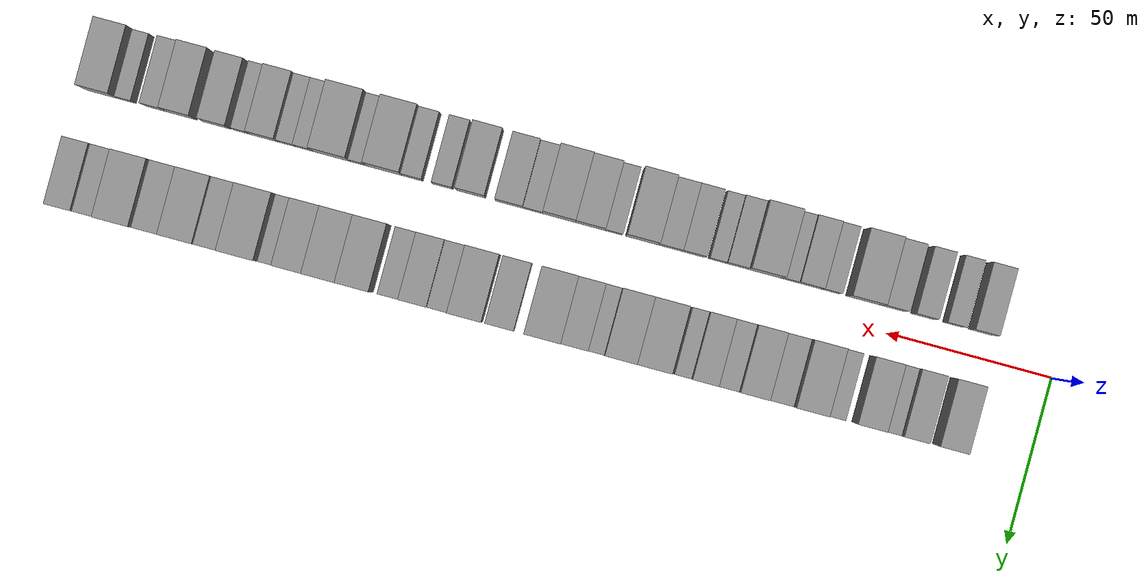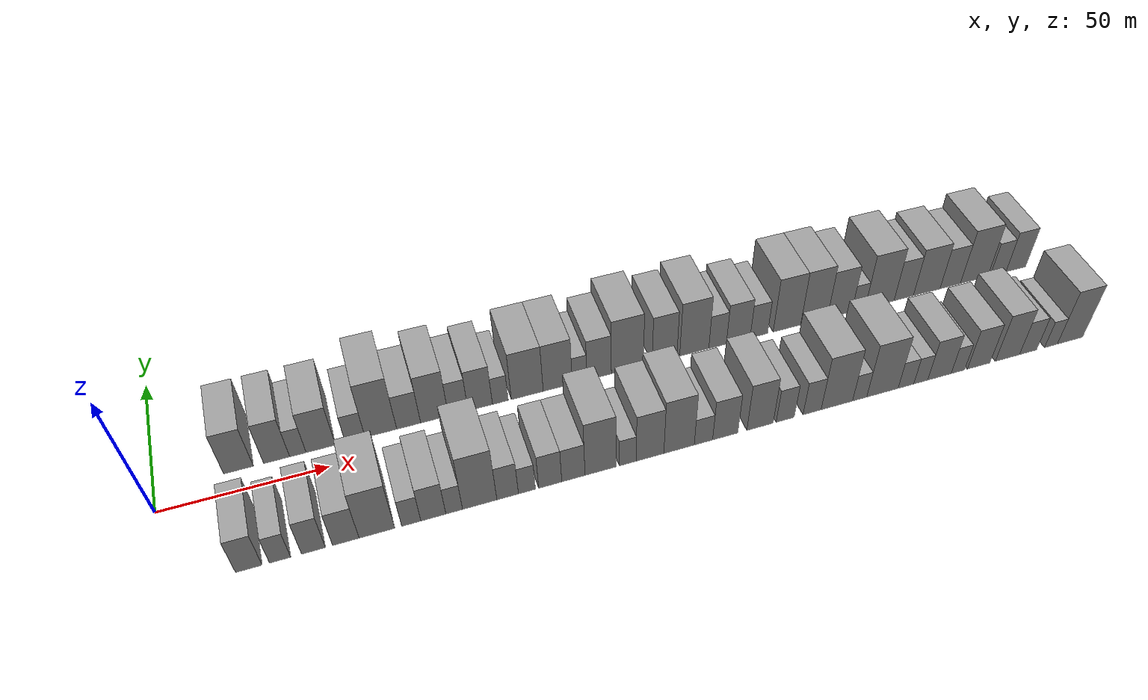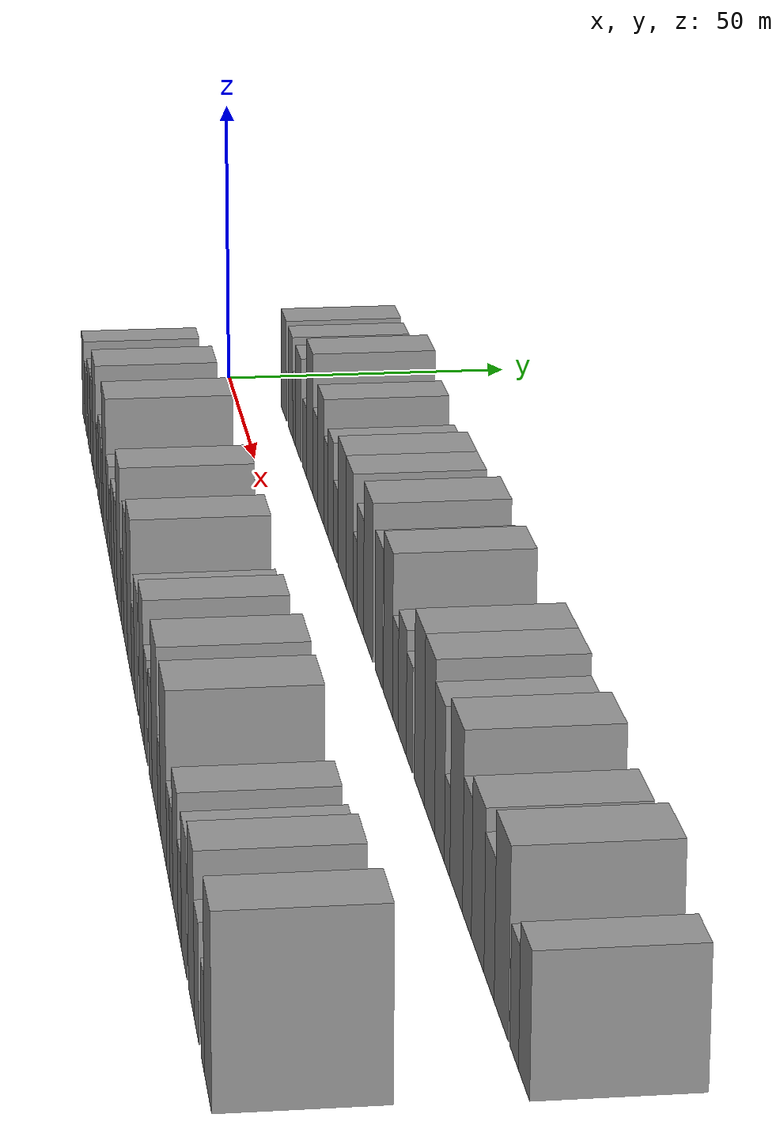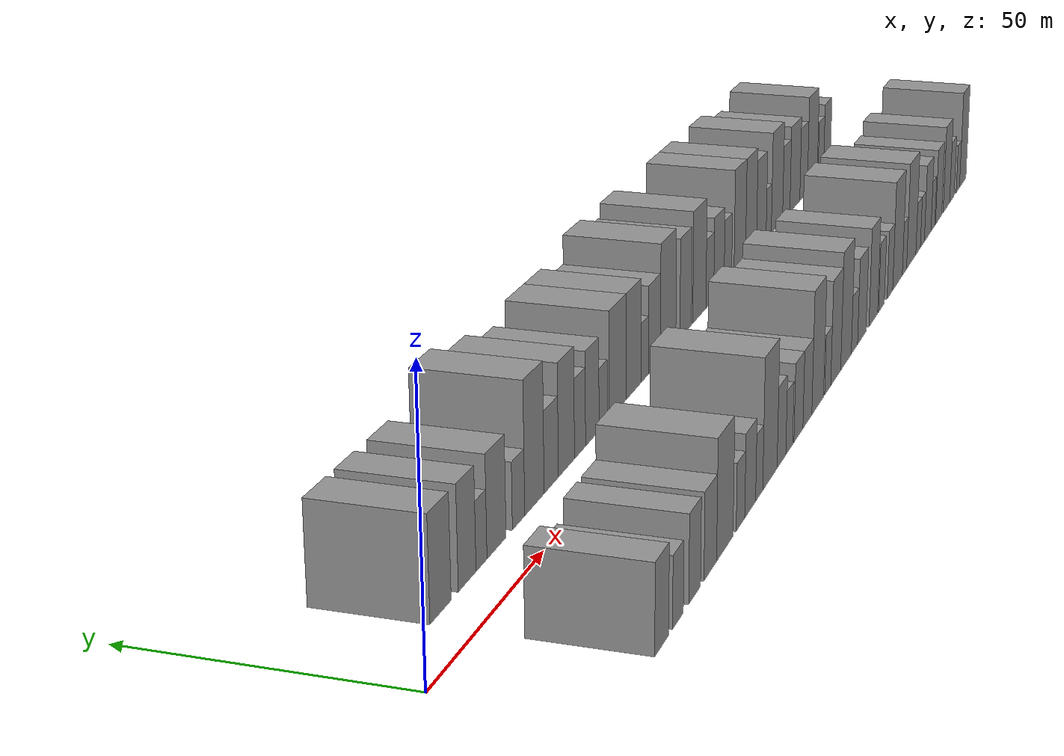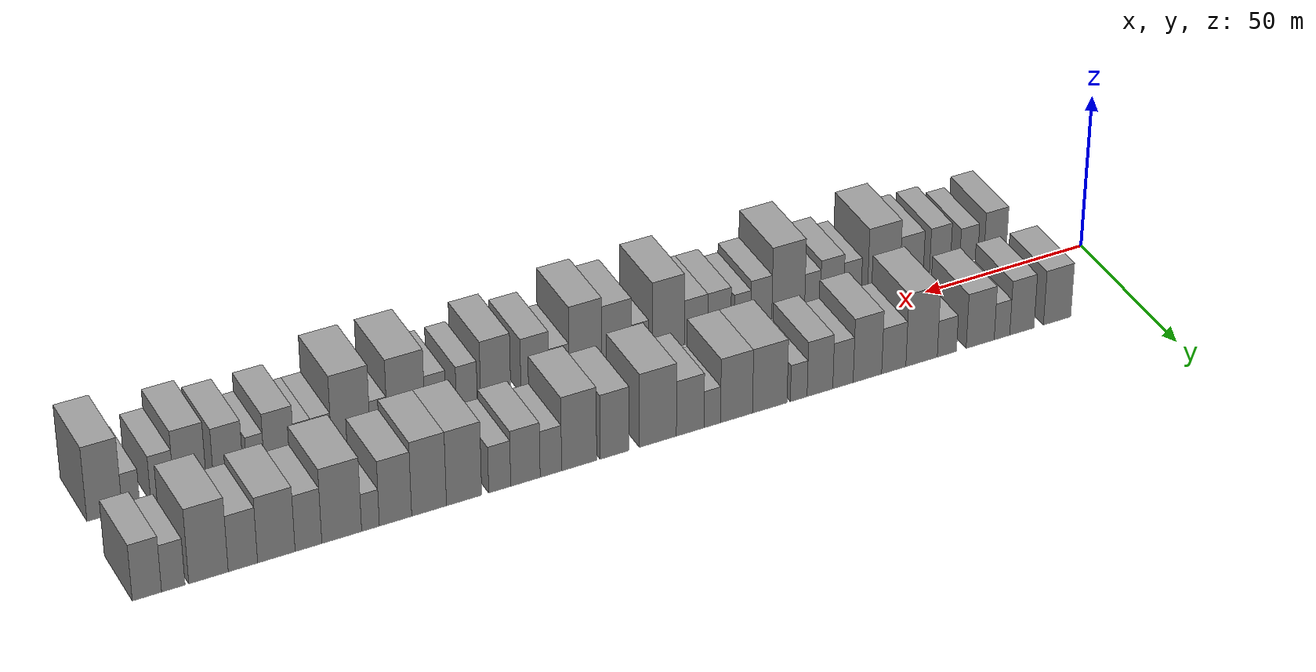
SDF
<sdf version="1.6">
 <world name="default">
  <scene>
   <sky><clouds><speed>12</speed></clouds></sky>
   <ambient>0.4 0.4 0.4 1</ambient>
   <background>0.7 0.7 0.7 1</background>
   <shadows>1</shadows>
  </scene>
  <gravity>0 0 -9.8066</gravity>
  <magnetic_field>6e-06 2.3e-05 -4.2e-05</magnetic_field>
  <physics default="0" name="default_physics" type="ode">
   <ode>
    <solver>
     <type>quick</type>
     <iters>10</iters>
     <sor>1.0</sor>
     <use_dynamic_moi_rescaling>0</use_dynamic_moi_rescaling>
    </solver>
    <constraints>
     <cfm>0</cfm>
     <erp>0.2</erp>
     <contact_max_correcting_vel>100</contact_max_correcting_vel>
     <contact_surface_layer>0.001</contact_surface_layer>
    </constraints>
   </ode>
   <max_step_size>0.004</max_step_size>
   <real_time_factor>1</real_time_factor>
   <real_time_update_rate>250</real_time_update_rate>
  </physics>
  <light name="sun" type="directional">
   <pose>0 0 10 0 0 0</pose>
   <diffuse>0.8 0.8 0.8 1</diffuse>
   <specular>0.2 0.2 0.2 1</specular>
   <attenuation>
    <range>1000</range>
    <constant>0.9</constant>
    <linear>0.01</linear>
    <quadratic>0.001</quadratic>
   </attenuation>
   <direction>-0.5 0.1 -0.9</direction>
  </light>
  <model name="building_1">
   <static>1</static>
   <pose>24.3288 17.5000 0 0.000000 0.000000 1.570796</pose>
   <link name="link">
    <pose>0 0 9.00 0 0 0</pose>
    <collision name="collision"><geometry><box><size>20.0000 8.6577 18.0000</size></box></geometry></collision>
    <visual name="visual">
     <cast_shadows>0</cast_shadows>
     <geometry><box><size>20.0000 8.6577 18.0000</size></box></geometry>
     <material>
      <script>
       <uri>model://grey_wall/materials/scripts</uri>
       <uri>model://grey_wall/materials/textures</uri>
       <name>vrc/grey_wall</name>
      </script>
     </material>
    </visual>
   </link>
  </model>
  <model name="building_2">
   <static>1</static>
   <pose>35.4990 17.5000 0 0.000000 0.000000 1.570796</pose>
   <link name="link">
    <pose>0 0 9.00 0 0 0</pose>
    <collision name="collision"><geometry><box><size>20.0000 7.6827 18.0000</size></box></geometry></collision>
    <visual name="visual">
     <cast_shadows>0</cast_shadows>
     <geometry><box><size>20.0000 7.6827 18.0000</size></box></geometry>
     <material>
      <script>
       <uri>model://grey_wall/materials/scripts</uri>
       <uri>model://grey_wall/materials/textures</uri>
       <name>vrc/grey_wall</name>
      </script>
     </material>
    </visual>
   </link>
  </model>
  <model name="building_3">
   <static>1</static>
   <pose>41.7820 17.5000 0 0.000000 0.000000 1.570796</pose>
   <link name="link">
    <pose>0 0 6.00 0 0 0</pose>
    <collision name="collision"><geometry><box><size>20.0000 4.8833 12.0000</size></box></geometry></collision>
    <visual name="visual">
     <cast_shadows>0</cast_shadows>
     <geometry><box><size>20.0000 4.8833 12.0000</size></box></geometry>
     <material>
      <script>
       <uri>model://grey_wall/materials/scripts</uri>
       <uri>model://grey_wall/materials/textures</uri>
       <name>vrc/grey_wall</name>
      </script>
     </material>
    </visual>
   </link>
  </model>
  <model name="building_4">
   <static>1</static>
   <pose>48.6134 17.5000 0 0.000000 0.000000 1.570796</pose>
   <link name="link">
    <pose>0 0 9.00 0 0 0</pose>
    <collision name="collision"><geometry><box><size>20.0000 8.7796 18.0000</size></box></geometry></collision>
    <visual name="visual">
     <cast_shadows>0</cast_shadows>
     <geometry><box><size>20.0000 8.7796 18.0000</size></box></geometry>
     <material>
      <script>
       <uri>model://grey_wall/materials/scripts</uri>
       <uri>model://grey_wall/materials/textures</uri>
       <name>vrc/grey_wall</name>
      </script>
     </material>
    </visual>
   </link>
  </model>
  <model name="building_5">
   <static>1</static>
   <pose>59.0030 17.5000 0 0.000000 0.000000 1.570796</pose>
   <link name="link">
    <pose>0 0 6.00 0 0 0</pose>
    <collision name="collision"><geometry><box><size>20.0000 5.9996 12.0000</size></box></geometry></collision>
    <visual name="visual">
     <cast_shadows>0</cast_shadows>
     <geometry><box><size>20.0000 5.9996 12.0000</size></box></geometry>
     <material>
      <script>
       <uri>model://grey_wall/materials/scripts</uri>
       <uri>model://grey_wall/materials/textures</uri>
       <name>vrc/grey_wall</name>
      </script>
     </material>
    </visual>
   </link>
  </model>
  <model name="building_6">
   <static>1</static>
   <pose>66.8728 17.5000 0 0.000000 0.000000 1.570796</pose>
   <link name="link">
    <pose>0 0 12.00 0 0 0</pose>
    <collision name="collision"><geometry><box><size>20.0000 9.7398 24.0000</size></box></geometry></collision>
    <visual name="visual">
     <cast_shadows>0</cast_shadows>
     <geometry><box><size>20.0000 9.7398 24.0000</size></box></geometry>
     <material>
      <script>
       <uri>model://grey_wall/materials/scripts</uri>
       <uri>model://grey_wall/materials/textures</uri>
       <name>vrc/grey_wall</name>
      </script>
     </material>
    </visual>
   </link>
  </model>
  <model name="building_7">
   <static>1</static>
   <pose>75.4735 17.5000 0 0.000000 0.000000 1.570796</pose>
   <link name="link">
    <pose>0 0 7.50 0 0 0</pose>
    <collision name="collision"><geometry><box><size>20.0000 7.4617 15.0000</size></box></geometry></collision>
    <visual name="visual">
     <cast_shadows>0</cast_shadows>
     <geometry><box><size>20.0000 7.4617 15.0000</size></box></geometry>
     <material>
      <script>
       <uri>model://grey_wall/materials/scripts</uri>
       <uri>model://grey_wall/materials/textures</uri>
       <name>vrc/grey_wall</name>
      </script>
     </material>
    </visual>
   </link>
  </model>
  <model name="building_8">
   <static>1</static>
   <pose>83.5701 17.5000 0 0.000000 0.000000 1.570796</pose>
   <link name="link">
    <pose>0 0 10.50 0 0 0</pose>
    <collision name="collision"><geometry><box><size>20.0000 8.7315 21.0000</size></box></geometry></collision>
    <visual name="visual">
     <cast_shadows>0</cast_shadows>
     <geometry><box><size>20.0000 8.7315 21.0000</size></box></geometry>
     <material>
      <script>
       <uri>model://grey_wall/materials/scripts</uri>
       <uri>model://grey_wall/materials/textures</uri>
       <name>vrc/grey_wall</name>
      </script>
     </material>
    </visual>
   </link>
  </model>
  <model name="building_9">
   <static>1</static>
   <pose>91.0407 17.5000 0 0.000000 0.000000 1.570796</pose>
   <link name="link">
    <pose>0 0 7.50 0 0 0</pose>
    <collision name="collision"><geometry><box><size>20.0000 6.2097 15.0000</size></box></geometry></collision>
    <visual name="visual">
     <cast_shadows>0</cast_shadows>
     <geometry><box><size>20.0000 6.2097 15.0000</size></box></geometry>
     <material>
      <script>
       <uri>model://grey_wall/materials/scripts</uri>
       <uri>model://grey_wall/materials/textures</uri>
       <name>vrc/grey_wall</name>
      </script>
     </material>
    </visual>
   </link>
  </model>
  <model name="building_10">
   <static>1</static>
   <pose>98.0474 17.5000 0 0.000000 0.000000 1.570796</pose>
   <link name="link">
    <pose>0 0 9.00 0 0 0</pose>
    <collision name="collision"><geometry><box><size>20.0000 7.8037 18.0000</size></box></geometry></collision>
    <visual name="visual">
     <cast_shadows>0</cast_shadows>
     <geometry><box><size>20.0000 7.8037 18.0000</size></box></geometry>
     <material>
      <script>
       <uri>model://grey_wall/materials/scripts</uri>
       <uri>model://grey_wall/materials/textures</uri>
       <name>vrc/grey_wall</name>
      </script>
     </material>
    </visual>
   </link>
  </model>
  <model name="building_11">
   <static>1</static>
   <pose>104.4831 17.5000 0 0.000000 0.000000 1.570796</pose>
   <link name="link">
    <pose>0 0 6.00 0 0 0</pose>
    <collision name="collision"><geometry><box><size>20.0000 5.0678 12.0000</size></box></geometry></collision>
    <visual name="visual">
     <cast_shadows>0</cast_shadows>
     <geometry><box><size>20.0000 5.0678 12.0000</size></box></geometry>
     <material>
      <script>
       <uri>model://grey_wall/materials/scripts</uri>
       <uri>model://grey_wall/materials/textures</uri>
       <name>vrc/grey_wall</name>
      </script>
     </material>
    </visual>
   </link>
  </model>
  <model name="building_12">
   <static>1</static>
   <pose>113.2187 17.5000 0 0.000000 0.000000 1.570796</pose>
   <link name="link">
    <pose>0 0 10.50 0 0 0</pose>
    <collision name="collision"><geometry><box><size>20.0000 10.4034 21.0000</size></box></geometry></collision>
    <visual name="visual">
     <cast_shadows>0</cast_shadows>
     <geometry><box><size>20.0000 10.4034 21.0000</size></box></geometry>
     <material>
      <script>
       <uri>model://grey_wall/materials/scripts</uri>
       <uri>model://grey_wall/materials/textures</uri>
       <name>vrc/grey_wall</name>
      </script>
     </material>
    </visual>
   </link>
  </model>
  <model name="building_13">
   <static>1</static>
   <pose>123.2028 17.5000 0 0.000000 0.000000 1.570796</pose>
   <link name="link">
    <pose>0 0 10.50 0 0 0</pose>
    <collision name="collision"><geometry><box><size>20.0000 9.5647 21.0000</size></box></geometry></collision>
    <visual name="visual">
     <cast_shadows>0</cast_shadows>
     <geometry><box><size>20.0000 9.5647 21.0000</size></box></geometry>
     <material>
      <script>
       <uri>model://grey_wall/materials/scripts</uri>
       <uri>model://grey_wall/materials/textures</uri>
       <name>vrc/grey_wall</name>
      </script>
     </material>
    </visual>
   </link>
  </model>
  <model name="building_14">
   <static>1</static>
   <pose>130.4264 17.5000 0 0.000000 0.000000 1.570796</pose>
   <link name="link">
    <pose>0 0 6.00 0 0 0</pose>
    <collision name="collision"><geometry><box><size>20.0000 4.8826 12.0000</size></box></geometry></collision>
    <visual name="visual">
     <cast_shadows>0</cast_shadows>
     <geometry><box><size>20.0000 4.8826 12.0000</size></box></geometry>
     <material>
      <script>
       <uri>model://grey_wall/materials/scripts</uri>
       <uri>model://grey_wall/materials/textures</uri>
       <name>vrc/grey_wall</name>
      </script>
     </material>
    </visual>
   </link>
  </model>
  <model name="building_15">
   <static>1</static>
   <pose>136.9708 17.5000 0 0.000000 0.000000 1.570796</pose>
   <link name="link">
    <pose>0 0 9.00 0 0 0</pose>
    <collision name="collision"><geometry><box><size>20.0000 8.2061 18.0000</size></box></geometry></collision>
    <visual name="visual">
     <cast_shadows>0</cast_shadows>
     <geometry><box><size>20.0000 8.2061 18.0000</size></box></geometry>
     <material>
      <script>
       <uri>model://grey_wall/materials/scripts</uri>
       <uri>model://grey_wall/materials/textures</uri>
       <name>vrc/grey_wall</name>
      </script>
     </material>
    </visual>
   </link>
  </model>
  <model name="building_16">
   <static>1</static>
   <pose>146.4967 17.5000 0 0.000000 0.000000 1.570796</pose>
   <link name="link">
    <pose>0 0 12.00 0 0 0</pose>
    <collision name="collision"><geometry><box><size>20.0000 10.8458 24.0000</size></box></geometry></collision>
    <visual name="visual">
     <cast_shadows>0</cast_shadows>
     <geometry><box><size>20.0000 10.8458 24.0000</size></box></geometry>
     <material>
      <script>
       <uri>model://grey_wall/materials/scripts</uri>
       <uri>model://grey_wall/materials/textures</uri>
       <name>vrc/grey_wall</name>
      </script>
     </material>
    </visual>
   </link>
  </model>
  <model name="building_17">
   <static>1</static>
   <pose>159.1878 17.5000 0 0.000000 0.000000 1.570796</pose>
   <link name="link">
    <pose>0 0 10.50 0 0 0</pose>
    <collision name="collision"><geometry><box><size>20.0000 8.5364 21.0000</size></box></geometry></collision>
    <visual name="visual">
     <cast_shadows>0</cast_shadows>
     <geometry><box><size>20.0000 8.5364 21.0000</size></box></geometry>
     <material>
      <script>
       <uri>model://grey_wall/materials/scripts</uri>
       <uri>model://grey_wall/materials/textures</uri>
       <name>vrc/grey_wall</name>
      </script>
     </material>
    </visual>
   </link>
  </model>
  <model name="building_18">
   <static>1</static>
   <pose>169.5330 17.5000 0 0.000000 0.000000 1.570796</pose>
   <link name="link">
    <pose>0 0 12.00 0 0 0</pose>
    <collision name="collision"><geometry><box><size>20.0000 10.1541 24.0000</size></box></geometry></collision>
    <visual name="visual">
     <cast_shadows>0</cast_shadows>
     <geometry><box><size>20.0000 10.1541 24.0000</size></box></geometry>
     <material>
      <script>
       <uri>model://grey_wall/materials/scripts</uri>
       <uri>model://grey_wall/materials/textures</uri>
       <name>vrc/grey_wall</name>
      </script>
     </material>
    </visual>
   </link>
  </model>
  <model name="building_19">
   <static>1</static>
   <pose>177.7087 17.5000 0 0.000000 0.000000 1.570796</pose>
   <link name="link">
    <pose>0 0 7.50 0 0 0</pose>
    <collision name="collision"><geometry><box><size>20.0000 6.1973 15.0000</size></box></geometry></collision>
    <visual name="visual">
     <cast_shadows>0</cast_shadows>
     <geometry><box><size>20.0000 6.1973 15.0000</size></box></geometry>
     <material>
      <script>
       <uri>model://grey_wall/materials/scripts</uri>
       <uri>model://grey_wall/materials/textures</uri>
       <name>vrc/grey_wall</name>
      </script>
     </material>
    </visual>
   </link>
  </model>
  <model name="building_20">
   <static>1</static>
   <pose>185.0354 17.5000 0 0.000000 0.000000 1.570796</pose>
   <link name="link">
    <pose>0 0 9.00 0 0 0</pose>
    <collision name="collision"><geometry><box><size>20.0000 8.4561 18.0000</size></box></geometry></collision>
    <visual name="visual">
     <cast_shadows>0</cast_shadows>
     <geometry><box><size>20.0000 8.4561 18.0000</size></box></geometry>
     <material>
      <script>
       <uri>model://grey_wall/materials/scripts</uri>
       <uri>model://grey_wall/materials/textures</uri>
       <name>vrc/grey_wall</name>
      </script>
     </material>
    </visual>
   </link>
  </model>
  <model name="building_21">
   <static>1</static>
   <pose>192.4085 17.5000 0 0.000000 0.000000 1.570796</pose>
   <link name="link">
    <pose>0 0 7.50 0 0 0</pose>
    <collision name="collision"><geometry><box><size>20.0000 6.2901 15.0000</size></box></geometry></collision>
    <visual name="visual">
     <cast_shadows>0</cast_shadows>
     <geometry><box><size>20.0000 6.2901 15.0000</size></box></geometry>
     <material>
      <script>
       <uri>model://grey_wall/materials/scripts</uri>
       <uri>model://grey_wall/materials/textures</uri>
       <name>vrc/grey_wall</name>
      </script>
     </material>
    </visual>
   </link>
  </model>
  <model name="building_22">
   <static>1</static>
   <pose>202.5575 17.5000 0 0.000000 0.000000 1.570796</pose>
   <link name="link">
    <pose>0 0 12.00 0 0 0</pose>
    <collision name="collision"><geometry><box><size>20.0000 10.0080 24.0000</size></box></geometry></collision>
    <visual name="visual">
     <cast_shadows>0</cast_shadows>
     <geometry><box><size>20.0000 10.0080 24.0000</size></box></geometry>
     <material>
      <script>
       <uri>model://grey_wall/materials/scripts</uri>
       <uri>model://grey_wall/materials/textures</uri>
       <name>vrc/grey_wall</name>
      </script>
     </material>
    </visual>
   </link>
  </model>
  <model name="building_23">
   <static>1</static>
   <pose>212.4708 17.5000 0 0.000000 0.000000 1.570796</pose>
   <link name="link">
    <pose>0 0 12.00 0 0 0</pose>
    <collision name="collision"><geometry><box><size>20.0000 9.8185 24.0000</size></box></geometry></collision>
    <visual name="visual">
     <cast_shadows>0</cast_shadows>
     <geometry><box><size>20.0000 9.8185 24.0000</size></box></geometry>
     <material>
      <script>
       <uri>model://grey_wall/materials/scripts</uri>
       <uri>model://grey_wall/materials/textures</uri>
       <name>vrc/grey_wall</name>
      </script>
     </material>
    </visual>
   </link>
  </model>
  <model name="building_24">
   <static>1</static>
   <pose>221.9110 17.5000 0 0.000000 0.000000 1.570796</pose>
   <link name="link">
    <pose>0 0 10.50 0 0 0</pose>
    <collision name="collision"><geometry><box><size>20.0000 9.0620 21.0000</size></box></geometry></collision>
    <visual name="visual">
     <cast_shadows>0</cast_shadows>
     <geometry><box><size>20.0000 9.0620 21.0000</size></box></geometry>
     <material>
      <script>
       <uri>model://grey_wall/materials/scripts</uri>
       <uri>model://grey_wall/materials/textures</uri>
       <name>vrc/grey_wall</name>
      </script>
     </material>
    </visual>
   </link>
  </model>
  <model name="building_25">
   <static>1</static>
   <pose>228.9191 17.5000 0 0.000000 0.000000 1.570796</pose>
   <link name="link">
    <pose>0 0 6.00 0 0 0</pose>
    <collision name="collision"><geometry><box><size>20.0000 4.9543 12.0000</size></box></geometry></collision>
    <visual name="visual">
     <cast_shadows>0</cast_shadows>
     <geometry><box><size>20.0000 4.9543 12.0000</size></box></geometry>
     <material>
      <script>
       <uri>model://grey_wall/materials/scripts</uri>
       <uri>model://grey_wall/materials/textures</uri>
       <name>vrc/grey_wall</name>
      </script>
     </material>
    </visual>
   </link>
  </model>
  <model name="building_26">
   <static>1</static>
   <pose>236.9182 17.5000 0 0.000000 0.000000 1.570796</pose>
   <link name="link">
    <pose>0 0 12.00 0 0 0</pose>
    <collision name="collision"><geometry><box><size>20.0000 11.0440 24.0000</size></box></geometry></collision>
    <visual name="visual">
     <cast_shadows>0</cast_shadows>
     <geometry><box><size>20.0000 11.0440 24.0000</size></box></geometry>
     <material>
      <script>
       <uri>model://grey_wall/materials/scripts</uri>
       <uri>model://grey_wall/materials/textures</uri>
       <name>vrc/grey_wall</name>
      </script>
     </material>
    </visual>
   </link>
  </model>
  <model name="building_27">
   <static>1</static>
   <pose>246.1286 17.5000 0 0.000000 0.000000 1.570796</pose>
   <link name="link">
    <pose>0 0 9.00 0 0 0</pose>
    <collision name="collision"><geometry><box><size>20.0000 7.3767 18.0000</size></box></geometry></collision>
    <visual name="visual">
     <cast_shadows>0</cast_shadows>
     <geometry><box><size>20.0000 7.3767 18.0000</size></box></geometry>
     <material>
      <script>
       <uri>model://grey_wall/materials/scripts</uri>
       <uri>model://grey_wall/materials/textures</uri>
       <name>vrc/grey_wall</name>
      </script>
     </material>
    </visual>
   </link>
  </model>
  <model name="building_28">
   <static>1</static>
   <pose>254.9602 17.5000 0 0.000000 0.000000 1.570796</pose>
   <link name="link">
    <pose>0 0 10.50 0 0 0</pose>
    <collision name="collision"><geometry><box><size>20.0000 10.2866 21.0000</size></box></geometry></collision>
    <visual name="visual">
     <cast_shadows>0</cast_shadows>
     <geometry><box><size>20.0000 10.2866 21.0000</size></box></geometry>
     <material>
      <script>
       <uri>model://grey_wall/materials/scripts</uri>
       <uri>model://grey_wall/materials/textures</uri>
       <name>vrc/grey_wall</name>
      </script>
     </material>
    </visual>
   </link>
  </model>
  <model name="building_29">
   <static>1</static>
   <pose>264.1082 17.5000 0 0.000000 0.000000 1.570796</pose>
   <link name="link">
    <pose>0 0 9.00 0 0 0</pose>
    <collision name="collision"><geometry><box><size>20.0000 8.0094 18.0000</size></box></geometry></collision>
    <visual name="visual">
     <cast_shadows>0</cast_shadows>
     <geometry><box><size>20.0000 8.0094 18.0000</size></box></geometry>
     <material>
      <script>
       <uri>model://grey_wall/materials/scripts</uri>
       <uri>model://grey_wall/materials/textures</uri>
       <name>vrc/grey_wall</name>
      </script>
     </material>
    </visual>
   </link>
  </model>
  <model name="building_30">
   <static>1</static>
   <pose>273.4680 17.5000 0 0.000000 0.000000 1.570796</pose>
   <link name="link">
    <pose>0 0 12.00 0 0 0</pose>
    <collision name="collision"><geometry><box><size>20.0000 10.7102 24.0000</size></box></geometry></collision>
    <visual name="visual">
     <cast_shadows>0</cast_shadows>
     <geometry><box><size>20.0000 10.7102 24.0000</size></box></geometry>
     <material>
      <script>
       <uri>model://grey_wall/materials/scripts</uri>
       <uri>model://grey_wall/materials/textures</uri>
       <name>vrc/grey_wall</name>
      </script>
     </material>
    </visual>
   </link>
  </model>
  <model name="building_31">
   <static>1</static>
   <pose>282.9808 17.5000 0 0.000000 0.000000 1.570796</pose>
   <link name="link">
    <pose>0 0 7.50 0 0 0</pose>
    <collision name="collision"><geometry><box><size>20.0000 6.3152 15.0000</size></box></geometry></collision>
    <visual name="visual">
     <cast_shadows>0</cast_shadows>
     <geometry><box><size>20.0000 6.3152 15.0000</size></box></geometry>
     <material>
      <script>
       <uri>model://grey_wall/materials/scripts</uri>
       <uri>model://grey_wall/materials/textures</uri>
       <name>vrc/grey_wall</name>
      </script>
     </material>
    </visual>
   </link>
  </model>
  <model name="building_32">
   <static>1</static>
   <pose>290.0704 17.5000 0 0.000000 0.000000 1.570796</pose>
   <link name="link">
    <pose>0 0 9.00 0 0 0</pose>
    <collision name="collision"><geometry><box><size>20.0000 7.8642 18.0000</size></box></geometry></collision>
    <visual name="visual">
     <cast_shadows>0</cast_shadows>
     <geometry><box><size>20.0000 7.8642 18.0000</size></box></geometry>
     <material>
      <script>
       <uri>model://grey_wall/materials/scripts</uri>
       <uri>model://grey_wall/materials/textures</uri>
       <name>vrc/grey_wall</name>
      </script>
     </material>
    </visual>
   </link>
  </model>
  <model name="building_33">
   <static>1</static>
   <pose>23.6141 -17.5000 0 0.000000 0.000000 1.570796</pose>
   <link name="link">
    <pose>0 0 7.50 0 0 0</pose>
    <collision name="collision"><geometry><box><size>20.0000 7.2282 15.0000</size></box></geometry></collision>
    <visual name="visual">
     <cast_shadows>0</cast_shadows>
     <geometry><box><size>20.0000 7.2282 15.0000</size></box></geometry>
     <material>
      <script>
       <uri>model://grey_wall/materials/scripts</uri>
       <uri>model://grey_wall/materials/textures</uri>
       <name>vrc/grey_wall</name>
      </script>
     </material>
    </visual>
   </link>
  </model>
  <model name="building_34">
   <static>1</static>
   <pose>32.1389 -17.5000 0 0.000000 0.000000 1.570796</pose>
   <link name="link">
    <pose>0 0 6.00 0 0 0</pose>
    <collision name="collision"><geometry><box><size>20.0000 5.8214 12.0000</size></box></geometry></collision>
    <visual name="visual">
     <cast_shadows>0</cast_shadows>
     <geometry><box><size>20.0000 5.8214 12.0000</size></box></geometry>
     <material>
      <script>
       <uri>model://grey_wall/materials/scripts</uri>
       <uri>model://grey_wall/materials/textures</uri>
       <name>vrc/grey_wall</name>
      </script>
     </material>
    </visual>
   </link>
  </model>
  <model name="building_35">
   <static>1</static>
   <pose>41.3731 -17.5000 0 0.000000 0.000000 1.570796</pose>
   <link name="link">
    <pose>0 0 7.50 0 0 0</pose>
    <collision name="collision"><geometry><box><size>20.0000 6.6470 15.0000</size></box></geometry></collision>
    <visual name="visual">
     <cast_shadows>0</cast_shadows>
     <geometry><box><size>20.0000 6.6470 15.0000</size></box></geometry>
     <material>
      <script>
       <uri>model://grey_wall/materials/scripts</uri>
       <uri>model://grey_wall/materials/textures</uri>
       <name>vrc/grey_wall</name>
      </script>
     </material>
    </visual>
   </link>
  </model>
  <model name="building_36">
   <static>1</static>
   <pose>50.4240 -17.5000 0 0.000000 0.000000 1.570796</pose>
   <link name="link">
    <pose>0 0 7.50 0 0 0</pose>
    <collision name="collision"><geometry><box><size>20.0000 7.4547 15.0000</size></box></geometry></collision>
    <visual name="visual">
     <cast_shadows>0</cast_shadows>
     <geometry><box><size>20.0000 7.4547 15.0000</size></box></geometry>
     <material>
      <script>
       <uri>model://grey_wall/materials/scripts</uri>
       <uri>model://grey_wall/materials/textures</uri>
       <name>vrc/grey_wall</name>
      </script>
     </material>
    </visual>
   </link>
  </model>
  <model name="building_37">
   <static>1</static>
   <pose>59.2470 -17.5000 0 0.000000 0.000000 1.570796</pose>
   <link name="link">
    <pose>0 0 10.50 0 0 0</pose>
    <collision name="collision"><geometry><box><size>20.0000 10.1913 21.0000</size></box></geometry></collision>
    <visual name="visual">
     <cast_shadows>0</cast_shadows>
     <geometry><box><size>20.0000 10.1913 21.0000</size></box></geometry>
     <material>
      <script>
       <uri>model://grey_wall/materials/scripts</uri>
       <uri>model://grey_wall/materials/textures</uri>
       <name>vrc/grey_wall</name>
      </script>
     </material>
    </visual>
   </link>
  </model>
  <model name="building_38">
   <static>1</static>
   <pose>69.1072 -17.5000 0 0.000000 0.000000 1.570796</pose>
   <link name="link">
    <pose>0 0 6.00 0 0 0</pose>
    <collision name="collision"><geometry><box><size>20.0000 5.5290 12.0000</size></box></geometry></collision>
    <visual name="visual">
     <cast_shadows>0</cast_shadows>
     <geometry><box><size>20.0000 5.5290 12.0000</size></box></geometry>
     <material>
      <script>
       <uri>model://grey_wall/materials/scripts</uri>
       <uri>model://grey_wall/materials/textures</uri>
       <name>vrc/grey_wall</name>
      </script>
     </material>
    </visual>
   </link>
  </model>
  <model name="building_39">
   <static>1</static>
   <pose>75.5181 -17.5000 0 0.000000 0.000000 1.570796</pose>
   <link name="link">
    <pose>0 0 7.50 0 0 0</pose>
    <collision name="collision"><geometry><box><size>20.0000 7.2929 15.0000</size></box></geometry></collision>
    <visual name="visual">
     <cast_shadows>0</cast_shadows>
     <geometry><box><size>20.0000 7.2929 15.0000</size></box></geometry>
     <material>
      <script>
       <uri>model://grey_wall/materials/scripts</uri>
       <uri>model://grey_wall/materials/textures</uri>
       <name>vrc/grey_wall</name>
      </script>
     </material>
    </visual>
   </link>
  </model>
  <model name="building_40">
   <static>1</static>
   <pose>81.6209 -17.5000 0 0.000000 0.000000 1.570796</pose>
   <link name="link">
    <pose>0 0 6.00 0 0 0</pose>
    <collision name="collision"><geometry><box><size>20.0000 4.9127 12.0000</size></box></geometry></collision>
    <visual name="visual">
     <cast_shadows>0</cast_shadows>
     <geometry><box><size>20.0000 4.9127 12.0000</size></box></geometry>
     <material>
      <script>
       <uri>model://grey_wall/materials/scripts</uri>
       <uri>model://grey_wall/materials/textures</uri>
       <name>vrc/grey_wall</name>
      </script>
     </material>
    </visual>
   </link>
  </model>
  <model name="building_41">
   <static>1</static>
   <pose>89.1789 -17.5000 0 0.000000 0.000000 1.570796</pose>
   <link name="link">
    <pose>0 0 12.00 0 0 0</pose>
    <collision name="collision"><geometry><box><size>20.0000 10.2033 24.0000</size></box></geometry></collision>
    <visual name="visual">
     <cast_shadows>0</cast_shadows>
     <geometry><box><size>20.0000 10.2033 24.0000</size></box></geometry>
     <material>
      <script>
       <uri>model://grey_wall/materials/scripts</uri>
       <uri>model://grey_wall/materials/textures</uri>
       <name>vrc/grey_wall</name>
      </script>
     </material>
    </visual>
   </link>
  </model>
  <model name="building_42">
   <static>1</static>
   <pose>97.5143 -17.5000 0 0.000000 0.000000 1.570796</pose>
   <link name="link">
    <pose>0 0 7.50 0 0 0</pose>
    <collision name="collision"><geometry><box><size>20.0000 6.4674 15.0000</size></box></geometry></collision>
    <visual name="visual">
     <cast_shadows>0</cast_shadows>
     <geometry><box><size>20.0000 6.4674 15.0000</size></box></geometry>
     <material>
      <script>
       <uri>model://grey_wall/materials/scripts</uri>
       <uri>model://grey_wall/materials/textures</uri>
       <name>vrc/grey_wall</name>
      </script>
     </material>
    </visual>
   </link>
  </model>
  <model name="building_43">
   <static>1</static>
   <pose>103.3263 -17.5000 0 0.000000 0.000000 1.570796</pose>
   <link name="link">
    <pose>0 0 6.00 0 0 0</pose>
    <collision name="collision"><geometry><box><size>20.0000 5.1566 12.0000</size></box></geometry></collision>
    <visual name="visual">
     <cast_shadows>0</cast_shadows>
     <geometry><box><size>20.0000 5.1566 12.0000</size></box></geometry>
     <material>
      <script>
       <uri>model://grey_wall/materials/scripts</uri>
       <uri>model://grey_wall/materials/textures</uri>
       <name>vrc/grey_wall</name>
      </script>
     </material>
    </visual>
   </link>
  </model>
  <model name="building_44">
   <static>1</static>
   <pose>110.4242 -17.5000 0 0.000000 0.000000 1.570796</pose>
   <link name="link">
    <pose>0 0 7.50 0 0 0</pose>
    <collision name="collision"><geometry><box><size>20.0000 7.0392 15.0000</size></box></geometry></collision>
    <visual name="visual">
     <cast_shadows>0</cast_shadows>
     <geometry><box><size>20.0000 7.0392 15.0000</size></box></geometry>
     <material>
      <script>
       <uri>model://grey_wall/materials/scripts</uri>
       <uri>model://grey_wall/materials/textures</uri>
       <name>vrc/grey_wall</name>
      </script>
     </material>
    </visual>
   </link>
  </model>
  <model name="building_45">
   <static>1</static>
   <pose>117.5318 -17.5000 0 0.000000 0.000000 1.570796</pose>
   <link name="link">
    <pose>0 0 7.50 0 0 0</pose>
    <collision name="collision"><geometry><box><size>20.0000 7.1759 15.0000</size></box></geometry></collision>
    <visual name="visual">
     <cast_shadows>0</cast_shadows>
     <geometry><box><size>20.0000 7.1759 15.0000</size></box></geometry>
     <material>
      <script>
       <uri>model://grey_wall/materials/scripts</uri>
       <uri>model://grey_wall/materials/textures</uri>
       <name>vrc/grey_wall</name>
      </script>
     </material>
    </visual>
   </link>
  </model>
  <model name="building_46">
   <static>1</static>
   <pose>125.9837 -17.5000 0 0.000000 0.000000 1.570796</pose>
   <link name="link">
    <pose>0 0 12.00 0 0 0</pose>
    <collision name="collision"><geometry><box><size>20.0000 9.7279 24.0000</size></box></geometry></collision>
    <visual name="visual">
     <cast_shadows>0</cast_shadows>
     <geometry><box><size>20.0000 9.7279 24.0000</size></box></geometry>
     <material>
      <script>
       <uri>model://grey_wall/materials/scripts</uri>
       <uri>model://grey_wall/materials/textures</uri>
       <name>vrc/grey_wall</name>
      </script>
     </material>
    </visual>
   </link>
  </model>
  <model name="building_47">
   <static>1</static>
   <pose>134.4826 -17.5000 0 0.000000 0.000000 1.570796</pose>
   <link name="link">
    <pose>0 0 6.00 0 0 0</pose>
    <collision name="collision"><geometry><box><size>20.0000 5.2699 12.0000</size></box></geometry></collision>
    <visual name="visual">
     <cast_shadows>0</cast_shadows>
     <geometry><box><size>20.0000 5.2699 12.0000</size></box></geometry>
     <material>
      <script>
       <uri>model://grey_wall/materials/scripts</uri>
       <uri>model://grey_wall/materials/textures</uri>
       <name>vrc/grey_wall</name>
      </script>
     </material>
    </visual>
   </link>
  </model>
  <model name="building_48">
   <static>1</static>
   <pose>141.5470 -17.5000 0 0.000000 0.000000 1.570796</pose>
   <link name="link">
    <pose>0 0 10.50 0 0 0</pose>
    <collision name="collision"><geometry><box><size>20.0000 8.8590 21.0000</size></box></geometry></collision>
    <visual name="visual">
     <cast_shadows>0</cast_shadows>
     <geometry><box><size>20.0000 8.8590 21.0000</size></box></geometry>
     <material>
      <script>
       <uri>model://grey_wall/materials/scripts</uri>
       <uri>model://grey_wall/materials/textures</uri>
       <name>vrc/grey_wall</name>
      </script>
     </material>
    </visual>
   </link>
  </model>
  <model name="building_49">
   <static>1</static>
   <pose>150.8816 -17.5000 0 0.000000 0.000000 1.570796</pose>
   <link name="link">
    <pose>0 0 12.00 0 0 0</pose>
    <collision name="collision"><geometry><box><size>20.0000 9.8102 24.0000</size></box></geometry></collision>
    <visual name="visual">
     <cast_shadows>0</cast_shadows>
     <geometry><box><size>20.0000 9.8102 24.0000</size></box></geometry>
     <material>
      <script>
       <uri>model://grey_wall/materials/scripts</uri>
       <uri>model://grey_wall/materials/textures</uri>
       <name>vrc/grey_wall</name>
      </script>
     </material>
    </visual>
   </link>
  </model>
  <model name="building_50">
   <static>1</static>
   <pose>158.7766 -17.5000 0 0.000000 0.000000 1.570796</pose>
   <link name="link">
    <pose>0 0 6.00 0 0 0</pose>
    <collision name="collision"><geometry><box><size>20.0000 5.9797 12.0000</size></box></geometry></collision>
    <visual name="visual">
     <cast_shadows>0</cast_shadows>
     <geometry><box><size>20.0000 5.9797 12.0000</size></box></geometry>
     <material>
      <script>
       <uri>model://grey_wall/materials/scripts</uri>
       <uri>model://grey_wall/materials/textures</uri>
       <name>vrc/grey_wall</name>
      </script>
     </material>
    </visual>
   </link>
  </model>
  <model name="building_51">
   <static>1</static>
   <pose>165.9112 -17.5000 0 0.000000 0.000000 1.570796</pose>
   <link name="link">
    <pose>0 0 9.00 0 0 0</pose>
    <collision name="collision"><geometry><box><size>20.0000 8.2895 18.0000</size></box></geometry></collision>
    <visual name="visual">
     <cast_shadows>0</cast_shadows>
     <geometry><box><size>20.0000 8.2895 18.0000</size></box></geometry>
     <material>
      <script>
       <uri>model://grey_wall/materials/scripts</uri>
       <uri>model://grey_wall/materials/textures</uri>
       <name>vrc/grey_wall</name>
      </script>
     </material>
    </visual>
   </link>
  </model>
  <model name="building_52">
   <static>1</static>
   <pose>177.4516 -17.5000 0 0.000000 0.000000 1.570796</pose>
   <link name="link">
    <pose>0 0 10.50 0 0 0</pose>
    <collision name="collision"><geometry><box><size>20.0000 8.7913 21.0000</size></box></geometry></collision>
    <visual name="visual">
     <cast_shadows>0</cast_shadows>
     <geometry><box><size>20.0000 8.7913 21.0000</size></box></geometry>
     <material>
      <script>
       <uri>model://grey_wall/materials/scripts</uri>
       <uri>model://grey_wall/materials/textures</uri>
       <name>vrc/grey_wall</name>
      </script>
     </material>
    </visual>
   </link>
  </model>
  <model name="building_53">
   <static>1</static>
   <pose>185.8971 -17.5000 0 0.000000 0.000000 1.570796</pose>
   <link name="link">
    <pose>0 0 7.50 0 0 0</pose>
    <collision name="collision"><geometry><box><size>20.0000 6.0997 15.0000</size></box></geometry></collision>
    <visual name="visual">
     <cast_shadows>0</cast_shadows>
     <geometry><box><size>20.0000 6.0997 15.0000</size></box></geometry>
     <material>
      <script>
       <uri>model://grey_wall/materials/scripts</uri>
       <uri>model://grey_wall/materials/textures</uri>
       <name>vrc/grey_wall</name>
      </script>
     </material>
    </visual>
   </link>
  </model>
  <model name="building_54">
   <static>1</static>
   <pose>195.0260 -17.5000 0 0.000000 0.000000 1.570796</pose>
   <link name="link">
    <pose>0 0 7.50 0 0 0</pose>
    <collision name="collision"><geometry><box><size>20.0000 6.1582 15.0000</size></box></geometry></collision>
    <visual name="visual">
     <cast_shadows>0</cast_shadows>
     <geometry><box><size>20.0000 6.1582 15.0000</size></box></geometry>
     <material>
      <script>
       <uri>model://grey_wall/materials/scripts</uri>
       <uri>model://grey_wall/materials/textures</uri>
       <name>vrc/grey_wall</name>
      </script>
     </material>
    </visual>
   </link>
  </model>
  <model name="building_55">
   <static>1</static>
   <pose>203.5397 -17.5000 0 0.000000 0.000000 1.570796</pose>
   <link name="link">
    <pose>0 0 12.00 0 0 0</pose>
    <collision name="collision"><geometry><box><size>20.0000 10.8690 24.0000</size></box></geometry></collision>
    <visual name="visual">
     <cast_shadows>0</cast_shadows>
     <geometry><box><size>20.0000 10.8690 24.0000</size></box></geometry>
     <material>
      <script>
       <uri>model://grey_wall/materials/scripts</uri>
       <uri>model://grey_wall/materials/textures</uri>
       <name>vrc/grey_wall</name>
      </script>
     </material>
    </visual>
   </link>
  </model>
  <model name="building_56">
   <static>1</static>
   <pose>211.4464 -17.5000 0 0.000000 0.000000 1.570796</pose>
   <link name="link">
    <pose>0 0 6.00 0 0 0</pose>
    <collision name="collision"><geometry><box><size>20.0000 4.9444 12.0000</size></box></geometry></collision>
    <visual name="visual">
     <cast_shadows>0</cast_shadows>
     <geometry><box><size>20.0000 4.9444 12.0000</size></box></geometry>
     <material>
      <script>
       <uri>model://grey_wall/materials/scripts</uri>
       <uri>model://grey_wall/materials/textures</uri>
       <name>vrc/grey_wall</name>
      </script>
     </material>
    </visual>
   </link>
  </model>
  <model name="building_57">
   <static>1</static>
   <pose>219.4408 -17.5000 0 0.000000 0.000000 1.570796</pose>
   <link name="link">
    <pose>0 0 12.00 0 0 0</pose>
    <collision name="collision"><geometry><box><size>20.0000 11.0442 24.0000</size></box></geometry></collision>
    <visual name="visual">
     <cast_shadows>0</cast_shadows>
     <geometry><box><size>20.0000 11.0442 24.0000</size></box></geometry>
     <material>
      <script>
       <uri>model://grey_wall/materials/scripts</uri>
       <uri>model://grey_wall/materials/textures</uri>
       <name>vrc/grey_wall</name>
      </script>
     </material>
    </visual>
   </link>
  </model>
  <model name="building_58">
   <static>1</static>
   <pose>227.7485 -17.5000 0 0.000000 0.000000 1.570796</pose>
   <link name="link">
    <pose>0 0 6.00 0 0 0</pose>
    <collision name="collision"><geometry><box><size>20.0000 5.5713 12.0000</size></box></geometry></collision>
    <visual name="visual">
     <cast_shadows>0</cast_shadows>
     <geometry><box><size>20.0000 5.5713 12.0000</size></box></geometry>
     <material>
      <script>
       <uri>model://grey_wall/materials/scripts</uri>
       <uri>model://grey_wall/materials/textures</uri>
       <name>vrc/grey_wall</name>
      </script>
     </material>
    </visual>
   </link>
  </model>
  <model name="building_59">
   <static>1</static>
   <pose>233.0287 -17.5000 0 0.000000 0.000000 1.570796</pose>
   <link name="link">
    <pose>0 0 6.00 0 0 0</pose>
    <collision name="collision"><geometry><box><size>20.0000 4.9889 12.0000</size></box></geometry></collision>
    <visual name="visual">
     <cast_shadows>0</cast_shadows>
     <geometry><box><size>20.0000 4.9889 12.0000</size></box></geometry>
     <material>
      <script>
       <uri>model://grey_wall/materials/scripts</uri>
       <uri>model://grey_wall/materials/textures</uri>
       <name>vrc/grey_wall</name>
      </script>
     </material>
    </visual>
   </link>
  </model>
  <model name="building_60">
   <static>1</static>
   <pose>239.7681 -17.5000 0 0.000000 0.000000 1.570796</pose>
   <link name="link">
    <pose>0 0 9.00 0 0 0</pose>
    <collision name="collision"><geometry><box><size>20.0000 8.4899 18.0000</size></box></geometry></collision>
    <visual name="visual">
     <cast_shadows>0</cast_shadows>
     <geometry><box><size>20.0000 8.4899 18.0000</size></box></geometry>
     <material>
      <script>
       <uri>model://grey_wall/materials/scripts</uri>
       <uri>model://grey_wall/materials/textures</uri>
       <name>vrc/grey_wall</name>
      </script>
     </material>
    </visual>
   </link>
  </model>
  <model name="building_61">
   <static>1</static>
   <pose>246.4639 -17.5000 0 0.000000 0.000000 1.570796</pose>
   <link name="link">
    <pose>0 0 6.00 0 0 0</pose>
    <collision name="collision"><geometry><box><size>20.0000 4.9017 12.0000</size></box></geometry></collision>
    <visual name="visual">
     <cast_shadows>0</cast_shadows>
     <geometry><box><size>20.0000 4.9017 12.0000</size></box></geometry>
     <material>
      <script>
       <uri>model://grey_wall/materials/scripts</uri>
       <uri>model://grey_wall/materials/textures</uri>
       <name>vrc/grey_wall</name>
      </script>
     </material>
    </visual>
   </link>
  </model>
  <model name="building_62">
   <static>1</static>
   <pose>254.0676 -17.5000 0 0.000000 0.000000 1.570796</pose>
   <link name="link">
    <pose>0 0 9.00 0 0 0</pose>
    <collision name="collision"><geometry><box><size>20.0000 8.3056 18.0000</size></box></geometry></collision>
    <visual name="visual">
     <cast_shadows>0</cast_shadows>
     <geometry><box><size>20.0000 8.3056 18.0000</size></box></geometry>
     <material>
      <script>
       <uri>model://grey_wall/materials/scripts</uri>
       <uri>model://grey_wall/materials/textures</uri>
       <name>vrc/grey_wall</name>
      </script>
     </material>
    </visual>
   </link>
  </model>
  <model name="building_63">
   <static>1</static>
   <pose>264.7147 -17.5000 0 0.000000 0.000000 1.570796</pose>
   <link name="link">
    <pose>0 0 10.50 0 0 0</pose>
    <collision name="collision"><geometry><box><size>20.0000 8.9885 21.0000</size></box></geometry></collision>
    <visual name="visual">
     <cast_shadows>0</cast_shadows>
     <geometry><box><size>20.0000 8.9885 21.0000</size></box></geometry>
     <material>
      <script>
       <uri>model://grey_wall/materials/scripts</uri>
       <uri>model://grey_wall/materials/textures</uri>
       <name>vrc/grey_wall</name>
      </script>
     </material>
    </visual>
   </link>
  </model>
  <model name="building_64">
   <static>1</static>
   <pose>272.4345 -17.5000 0 0.000000 0.000000 1.570796</pose>
   <link name="link">
    <pose>0 0 7.50 0 0 0</pose>
    <collision name="collision"><geometry><box><size>20.0000 6.4512 15.0000</size></box></geometry></collision>
    <visual name="visual">
     <cast_shadows>0</cast_shadows>
     <geometry><box><size>20.0000 6.4512 15.0000</size></box></geometry>
     <material>
      <script>
       <uri>model://grey_wall/materials/scripts</uri>
       <uri>model://grey_wall/materials/textures</uri>
       <name>vrc/grey_wall</name>
      </script>
     </material>
    </visual>
   </link>
  </model>
  <model name="building_65">
   <static>1</static>
   <pose>281.0928 -17.5000 0 0.000000 0.000000 1.570796</pose>
   <link name="link">
    <pose>0 0 6.00 0 0 0</pose>
    <collision name="collision"><geometry><box><size>20.0000 4.8652 12.0000</size></box></geometry></collision>
    <visual name="visual">
     <cast_shadows>0</cast_shadows>
     <geometry><box><size>20.0000 4.8652 12.0000</size></box></geometry>
     <material>
      <script>
       <uri>model://grey_wall/materials/scripts</uri>
       <uri>model://grey_wall/materials/textures</uri>
       <name>vrc/grey_wall</name>
      </script>
     </material>
    </visual>
   </link>
  </model>
  <model name="building_66">
   <static>1</static>
   <pose>288.3588 -17.5000 0 0.000000 0.000000 1.570796</pose>
   <link name="link">
    <pose>0 0 12.00 0 0 0</pose>
    <collision name="collision"><geometry><box><size>20.0000 9.6667 24.0000</size></box></geometry></collision>
    <visual name="visual">
     <cast_shadows>0</cast_shadows>
     <geometry><box><size>20.0000 9.6667 24.0000</size></box></geometry>
     <material>
      <script>
       <uri>model://grey_wall/materials/scripts</uri>
       <uri>model://grey_wall/materials/textures</uri>
       <name>vrc/grey_wall</name>
      </script>
     </material>
    </visual>
   </link>
  </model>
 </world>
</sdf>
